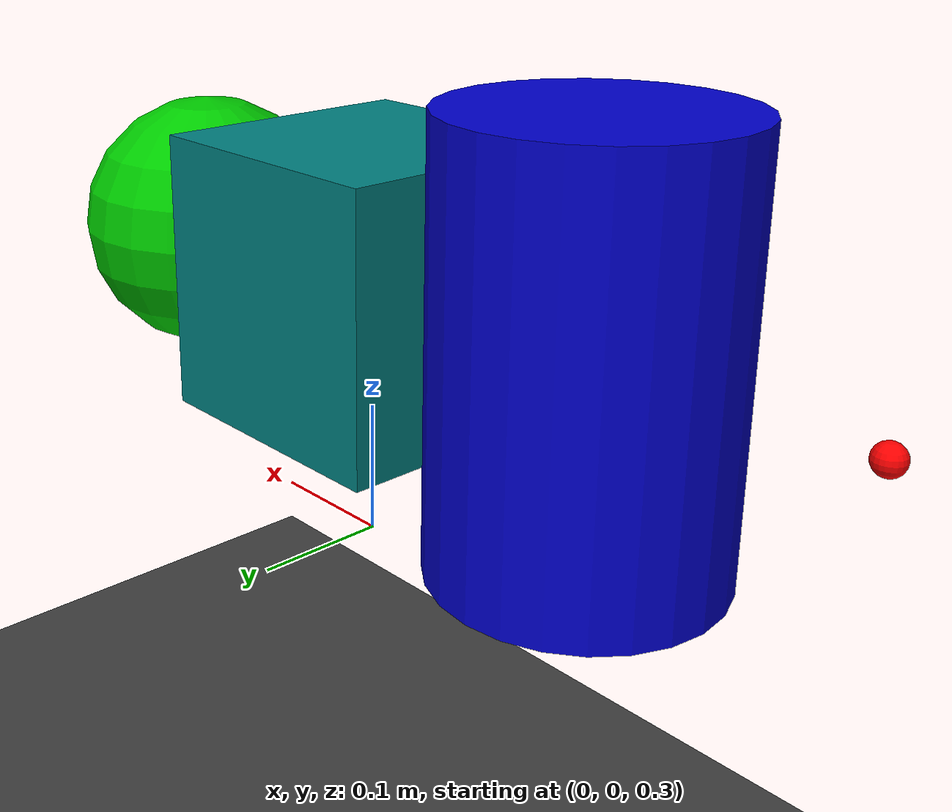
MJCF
<mujoco model="simple_scene">
    <option timestep="0.005" gravity="0 0 -9.81"/>

    <asset>
        <texture name="plane_texture" type="2d" builtin="checker" rgb1="0.2 0.2 0.2" rgb2="0.3 0.3 0.3" width="512" height="512"/>
        <material name="plane_material" texture="plane_texture" texrepeat="5 5" reflectance="0"/>
    </asset>

    <worldbody>
        <geom type="plane" size="1 1 0.1" material="plane_material"/>

        <body pos="0 0 0.5">
            <geom type="box" size="0.1 0.1 0.1" rgba="0 0.5 0.5 1"/>
        </body>

        <body pos="0.2 0 0.5">
            <geom type="sphere" size="0.1" rgba="0 0.8 0 1"/>
        </body>

        <body pos="-0.2 0 0.5">
            <geom type="cylinder" size="0.1 0.15" rgba="0 0 0.8 1"/>
        </body>

        <body pos="-0.4 0 0.5">
            <geom type="sphere" size="0.01" rgba="1 0 0 1"/>
        </body>

        <!-- Cameras -->
        <camera name="camera1" pos="0 -0.1 1" focal="1 1" sensorsize="3 3" resolution="1 1"/>
        <camera name="camera2" pos="0 0.1 1" fovy="90"/>
    </worldbody>
</mujoco>
